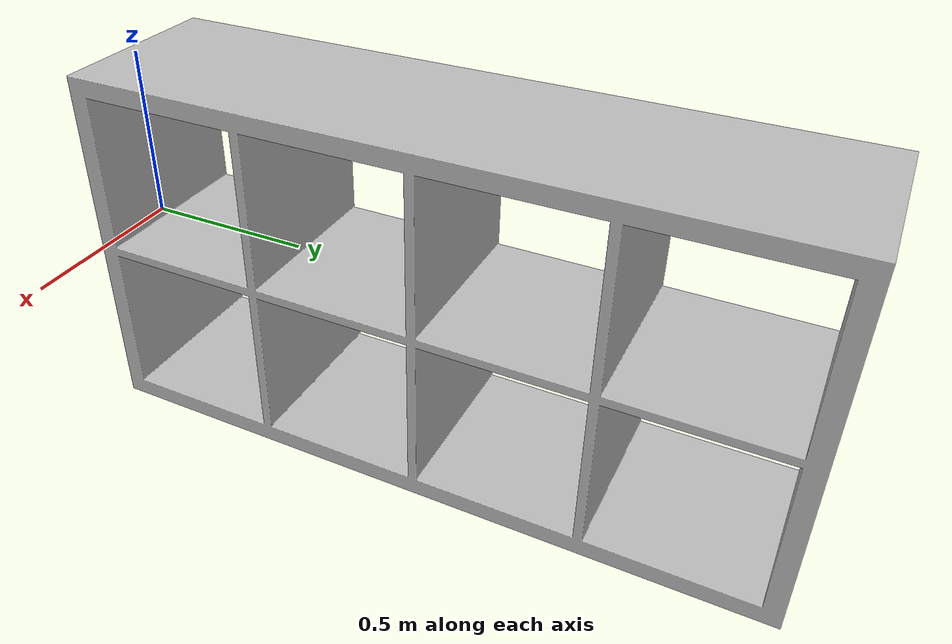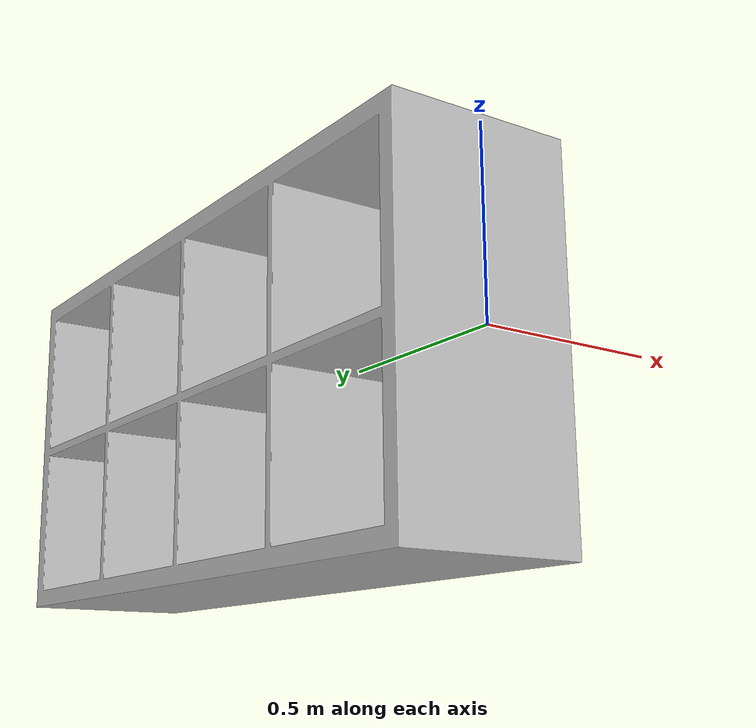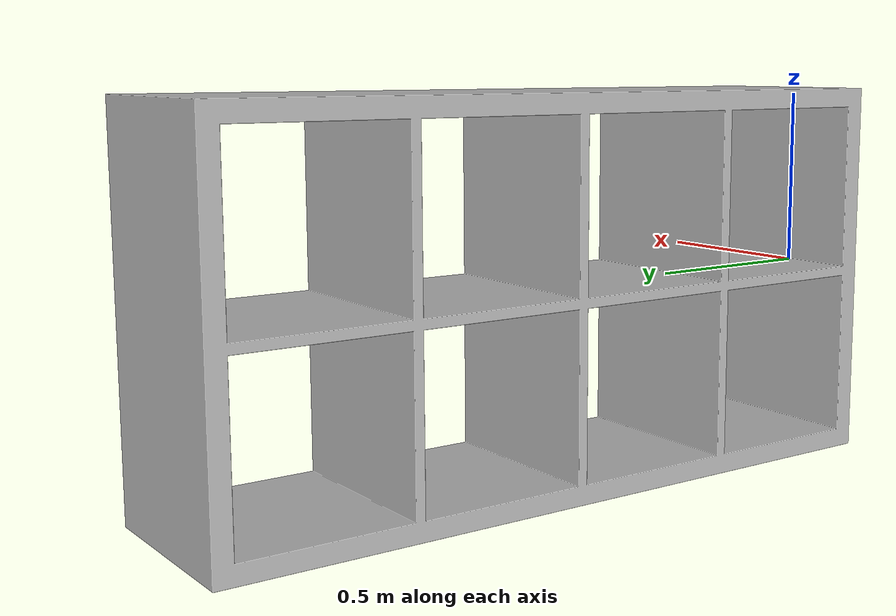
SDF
<?xml version='1.0'?>
<sdf version="1.4">
  <model name="bookshelf">
    <pose>0 0 0 0 0 0</pose>
    <static>true</static>
    <link name="body">
      <inertial>
        <mass>20</mass>
        <inertia> <!-- inertias are tricky to compute -->
          <!-- http://gazebosim.org/tutorials?tut=inertia&cat=build_robot -->
          <ixx>1</ixx>       <!-- for a box: ixx = 0.083 * mass * (y*y + z*z) -->
          <ixy>000000</ixy>         <!-- for a box: ixy = 0 -->
          <ixz>0.000000</ixz>         <!-- for a box: ixz = 0 -->
          <iyy>1</iyy>       <!-- for a box: iyy = 0.083 * mass * (x*x + z*z) -->
          <iyz>0.000000</iyz>         <!-- for a box: iyz = 0 -->
          <izz>1</izz>       <!-- for a box: izz = 0.083 * mass * (x*x + y*y) -->
        </inertia>
      </inertial>
      <collision name="collision">
        <geometry>
          <mesh>
			  <uri>model://bookshelf/meshes/bookshelf.obj</uri>
			  <scale>1.3 1.3 1.3</scale>
		  </mesh>
        </geometry>
      </collision>
      <visual name="visual">
        <geometry>
          <mesh>
			  <uri>model://bookshelf/meshes/bookshelf.obj</uri>
			  <scale>1.3 1.3 1.3</scale>
          </mesh>
        </geometry>
      </visual>
    </link>
  </model>
</sdf>
